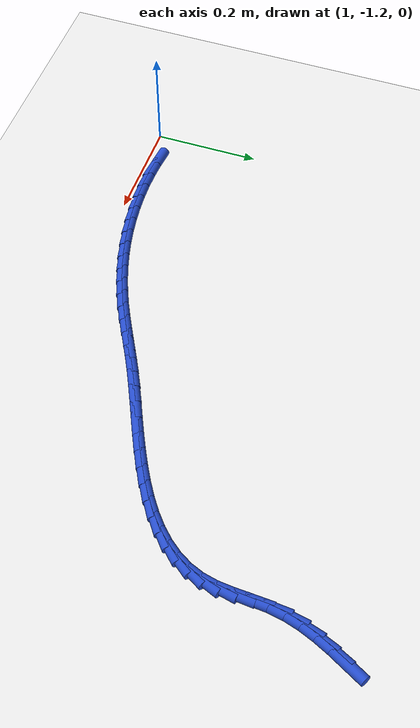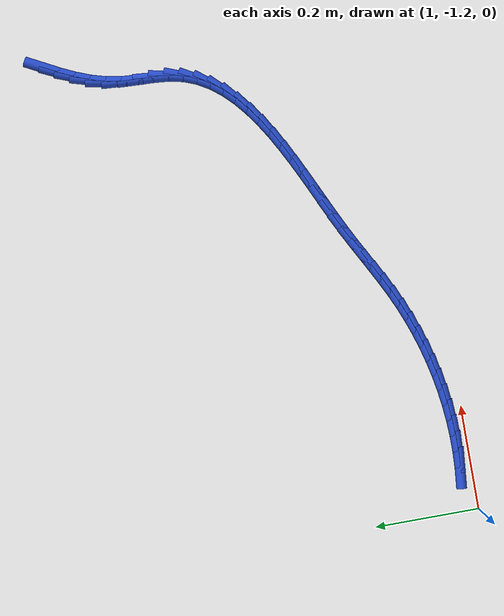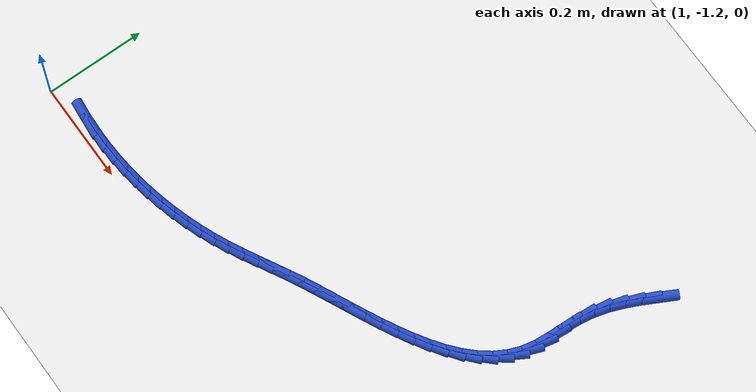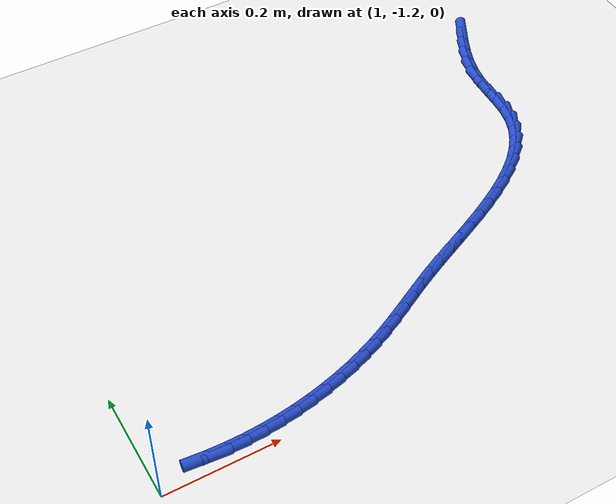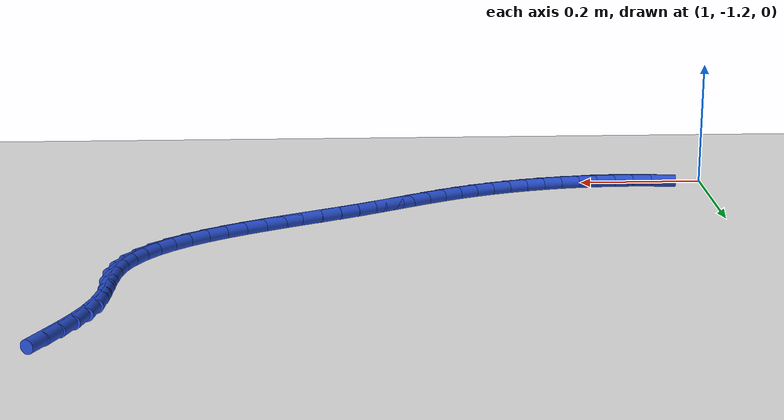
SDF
<sdf version="1.6">
 <world name="default">
  <model name="ground_plane">
   <static>1</static>
   <link name="link">
    <collision name="collision">
     <geometry><plane><normal>0 0 1</normal><size>100 100</size></plane></geometry>
     <surface><friction><ode><mu>100</mu><mu2>50</mu2></ode></friction></surface>
    </collision>
    <visual name="visual">
     <cast_shadows>0</cast_shadows>
     <geometry><plane><normal>0 0 1</normal><size>100 100</size></plane></geometry>
     <material>
      <script><uri>file://media/materials/scripts/gazebo.material</uri><name>Gazebo/WhiteGlow</name></script>
     </material>
    </visual>
   </link>
  </model>
  <model name="line">
   <link name="link_141">
    <pose>1.972735547722094 -0.5315266717839613 0.01 0 1.57 1.0895394332580013</pose>
    <collision name="collision">
     <geometry><cylinder><radius>0.01</radius><length>0.08</length></cylinder></geometry>
    </collision>
    <visual name="visual">
     <material>
      <script><name>Gazebo/Blue</name><uri>file://media/materials/scripts/gazebo.material</uri></script>
     </material>
     <geometry><cylinder><radius>0.01</radius><length>0.08</length></cylinder></geometry>
    </visual>
   </link>
   <link name="link_142">
    <pose>1.958671051342357 -0.5584593449574671 0.01 0 1.57 1.1349232564563208</pose>
    <collision name="collision">
     <geometry><cylinder><radius>0.01</radius><length>0.08</length></cylinder></geometry>
    </collision>
    <visual name="visual">
     <material>
      <script><name>Gazebo/Blue</name><uri>file://media/materials/scripts/gazebo.material</uri></script>
     </material>
     <geometry><cylinder><radius>0.01</radius><length>0.08</length></cylinder></geometry>
    </visual>
   </link>
   <link name="link_143">
    <pose>1.9459172053854918 -0.5858428816379575 0.01 0 1.57 1.2028109044663713</pose>
    <collision name="collision">
     <geometry><cylinder><radius>0.01</radius><length>0.08</length></cylinder></geometry>
    </collision>
    <visual name="visual">
     <material>
      <script><name>Gazebo/Blue</name><uri>file://media/materials/scripts/gazebo.material</uri></script>
     </material>
     <geometry><cylinder><radius>0.01</radius><length>0.08</length></cylinder></geometry>
    </visual>
   </link>
   <link name="link_144">
    <pose>1.9351276069982721 -0.613828028414443 0.01 0 1.57 1.2937505690378623</pose>
    <collision name="collision">
     <geometry><cylinder><radius>0.01</radius><length>0.08</length></cylinder></geometry>
    </collision>
    <visual name="visual">
     <material>
      <script><name>Gazebo/Blue</name><uri>file://media/materials/scripts/gazebo.material</uri></script>
     </material>
     <geometry><cylinder><radius>0.01</radius><length>0.08</length></cylinder></geometry>
    </visual>
   </link>
   <link name="link_145">
    <pose>1.926955853327473 -0.6425655318759336 0.01 0 1.57 1.4063452140352284</pose>
    <collision name="collision">
     <geometry><cylinder><radius>0.01</radius><length>0.08</length></cylinder></geometry>
    </collision>
    <visual name="visual">
     <material>
      <script><name>Gazebo/Blue</name><uri>file://media/materials/scripts/gazebo.material</uri></script>
     </material>
     <geometry><cylinder><radius>0.01</radius><length>0.08</length></cylinder></geometry>
    </visual>
   </link>
   <link name="link_146">
    <pose>1.9220380148349256 -0.6722000252129207 0.01 0 1.57 1.5027235412687323</pose>
    <collision name="collision">
     <geometry><cylinder><radius>0.01</radius><length>0.08</length></cylinder></geometry>
    </collision>
    <visual name="visual">
     <material>
      <script><name>Gazebo/Blue</name><uri>file://media/materials/scripts/gazebo.material</uri></script>
     </material>
     <geometry><cylinder><radius>0.01</radius><length>0.08</length></cylinder></geometry>
    </visual>
   </link>
   <link name="link_147">
    <pose>1.919971280161214 -0.7025137742538957 0.01 0 1.57 1.5303949656319236</pose>
    <collision name="collision">
     <geometry><cylinder><radius>0.01</radius><length>0.08</length></cylinder></geometry>
    </collision>
    <visual name="visual">
     <material>
      <script><name>Gazebo/Blue</name><uri>file://media/materials/scripts/gazebo.material</uri></script>
     </material>
     <geometry><cylinder><radius>0.01</radius><length>0.08</length></cylinder></geometry>
    </visual>
   </link>
   <link name="link_148">
    <pose>1.9187498424354406 -0.7327299116873564 0.01 0 1.57 1.4850168388738785</pose>
    <collision name="collision">
     <geometry><cylinder><radius>0.01</radius><length>0.08</length></cylinder></geometry>
    </collision>
    <visual name="visual">
     <material>
      <script><name>Gazebo/Blue</name><uri>file://media/materials/scripts/gazebo.material</uri></script>
     </material>
     <geometry><cylinder><radius>0.01</radius><length>0.08</length></cylinder></geometry>
    </visual>
   </link>
   <link name="link_149">
    <pose>1.9162308490614555 -0.7620237679427604 0.01 0 1.57 1.360731686510854</pose>
    <collision name="collision">
     <geometry><cylinder><radius>0.01</radius><length>0.08</length></cylinder></geometry>
    </collision>
    <visual name="visual">
     <material>
      <script><name>Gazebo/Blue</name><uri>file://media/materials/scripts/gazebo.material</uri></script>
     </material>
     <geometry><cylinder><radius>0.01</radius><length>0.08</length></cylinder></geometry>
    </visual>
   </link>
   <link name="link_150">
    <pose>1.9103509616213512 -0.7896016809310938 0.01 0 1.57 1.1988333541822627</pose>
    <collision name="collision">
     <geometry><cylinder><radius>0.01</radius><length>0.08</length></cylinder></geometry>
    </collision>
    <visual name="visual">
     <material>
      <script><name>Gazebo/Blue</name><uri>file://media/materials/scripts/gazebo.material</uri></script>
     </material>
     <geometry><cylinder><radius>0.01</radius><length>0.08</length></cylinder></geometry>
    </visual>
   </link>
   <link name="link_151">
    <pose>1.900369946191003 -0.8151859485978633 0.01 0 1.57 1.0463890483282117</pose>
    <collision name="collision">
     <geometry><cylinder><radius>0.01</radius><length>0.08</length></cylinder></geometry>
    </collision>
    <visual name="visual">
     <material>
      <script><name>Gazebo/Blue</name><uri>file://media/materials/scripts/gazebo.material</uri></script>
     </material>
     <geometry><cylinder><radius>0.01</radius><length>0.08</length></cylinder></geometry>
    </visual>
   </link>
   <link name="link_152">
    <pose>1.8866389131039947 -0.8389244513150046 0.01 0 1.57 0.9113168855630387</pose>
    <collision name="collision">
     <geometry><cylinder><radius>0.01</radius><length>0.08</length></cylinder></geometry>
    </collision>
    <visual name="visual">
     <material>
      <script><name>Gazebo/Blue</name><uri>file://media/materials/scripts/gazebo.material</uri></script>
     </material>
     <geometry><cylinder><radius>0.01</radius><length>0.08</length></cylinder></geometry>
    </visual>
   </link>
   <link name="link_153">
    <pose>1.8695415953245536 -0.8609777910298934 0.01 0 1.57 0.7964522340949942</pose>
    <collision name="collision">
     <geometry><cylinder><radius>0.01</radius><length>0.08</length></cylinder></geometry>
    </collision>
    <visual name="visual">
     <material>
      <script><name>Gazebo/Blue</name><uri>file://media/materials/scripts/gazebo.material</uri></script>
     </material>
     <geometry><cylinder><radius>0.01</radius><length>0.08</length></cylinder></geometry>
    </visual>
   </link>
   <link name="link_154">
    <pose>1.8494617258169082 -0.8815065696899055 0.01 0 1.57 0.7016182966310126</pose>
    <collision name="collision">
     <geometry><cylinder><radius>0.01</radius><length>0.08</length></cylinder></geometry>
    </collision>
    <visual name="visual">
     <material>
      <script><name>Gazebo/Blue</name><uri>file://media/materials/scripts/gazebo.material</uri></script>
     </material>
     <geometry><cylinder><radius>0.01</radius><length>0.08</length></cylinder></geometry>
    </visual>
   </link>
   <link name="link_155">
    <pose>1.8267830375452854 -0.9006713892424177 0.01 0 1.57 0.625026199521266</pose>
    <collision name="collision">
     <geometry><cylinder><radius>0.01</radius><length>0.08</length></cylinder></geometry>
    </collision>
    <visual name="visual">
     <material>
      <script><name>Gazebo/Blue</name><uri>file://media/materials/scripts/gazebo.material</uri></script>
     </material>
     <geometry><cylinder><radius>0.01</radius><length>0.08</length></cylinder></geometry>
    </visual>
   </link>
   <link name="link_156">
    <pose>1.801889263473914 -0.9186328516348046 0.01 0 1.57 0.5643769132016283</pose>
    <collision name="collision">
     <geometry><cylinder><radius>0.01</radius><length>0.08</length></cylinder></geometry>
    </collision>
    <visual name="visual">
     <material>
      <script><name>Gazebo/Blue</name><uri>file://media/materials/scripts/gazebo.material</uri></script>
     </material>
     <geometry><cylinder><radius>0.01</radius><length>0.08</length></cylinder></geometry>
    </visual>
   </link>
   <link name="link_157">
    <pose>1.775164136567021 -0.9355515588144426 0.01 0 1.57 0.5174812959984726</pose>
    <collision name="collision">
     <geometry><cylinder><radius>0.01</radius><length>0.08</length></cylinder></geometry>
    </collision>
    <visual name="visual">
     <material>
      <script><name>Gazebo/Blue</name><uri>file://media/materials/scripts/gazebo.material</uri></script>
     </material>
     <geometry><cylinder><radius>0.01</radius><length>0.08</length></cylinder></geometry>
    </visual>
   </link>
   <link name="link_158">
    <pose>1.7469913897888343 -0.9515881127287074 0.01 0 1.57 0.4825287391093509</pose>
    <collision name="collision">
     <geometry><cylinder><radius>0.01</radius><length>0.08</length></cylinder></geometry>
    </collision>
    <visual name="visual">
     <material>
      <script><name>Gazebo/Blue</name><uri>file://media/materials/scripts/gazebo.material</uri></script>
     </material>
     <geometry><cylinder><radius>0.01</radius><length>0.08</length></cylinder></geometry>
    </visual>
   </link>
   <link name="link_159">
    <pose>1.7177547561035822 -0.9669031153249755 0.01 0 1.57 0.45816845521325333</pose>
    <collision name="collision">
     <geometry><cylinder><radius>0.01</radius><length>0.08</length></cylinder></geometry>
    </collision>
    <visual name="visual">
     <material>
      <script><name>Gazebo/Blue</name><uri>file://media/materials/scripts/gazebo.material</uri></script>
     </material>
     <geometry><cylinder><radius>0.01</radius><length>0.08</length></cylinder></geometry>
    </visual>
   </link>
   <link name="link_160">
    <pose>1.687837968475491 -0.9816571685506218 0.01 0 1.57 0.44351400301915167</pose>
    <collision name="collision">
     <geometry><cylinder><radius>0.01</radius><length>0.08</length></cylinder></geometry>
    </collision>
    <visual name="visual">
     <material>
      <script><name>Gazebo/Blue</name><uri>file://media/materials/scripts/gazebo.material</uri></script>
     </material>
     <geometry><cylinder><radius>0.01</radius><length>0.08</length></cylinder></geometry>
    </visual>
   </link>
   <link name="link_161">
    <pose>1.6576247598687899 -0.9960108743530232 0.01 0 1.57 0.4381309708203284</pose>
    <collision name="collision">
     <geometry><cylinder><radius>0.01</radius><length>0.08</length></cylinder></geometry>
    </collision>
    <visual name="visual">
     <material>
      <script><name>Gazebo/Blue</name><uri>file://media/materials/scripts/gazebo.material</uri></script>
     </material>
     <geometry><cylinder><radius>0.01</radius><length>0.08</length></cylinder></geometry>
    </visual>
   </link>
   <link name="link_162">
    <pose>1.6274988632477059 -1.0101248346795555 0.01 0 1.57 0.4420376604432467</pose>
    <collision name="collision">
     <geometry><cylinder><radius>0.01</radius><length>0.08</length></cylinder></geometry>
    </collision>
    <visual name="visual">
     <material>
      <script><name>Gazebo/Blue</name><uri>file://media/materials/scripts/gazebo.material</uri></script>
     </material>
     <geometry><cylinder><radius>0.01</radius><length>0.08</length></cylinder></geometry>
    </visual>
   </link>
   <link name="link_163">
    <pose>1.597844011576467 -1.0241596514775937 0.01 0 1.57 0.4557343381545153</pose>
    <collision name="collision">
     <geometry><cylinder><radius>0.01</radius><length>0.08</length></cylinder></geometry>
    </collision>
    <visual name="visual">
     <material>
      <script><name>Gazebo/Blue</name><uri>file://media/materials/scripts/gazebo.material</uri></script>
     </material>
     <geometry><cylinder><radius>0.01</radius><length>0.08</length></cylinder></geometry>
    </visual>
   </link>
   <link name="link_164">
    <pose>1.569043937819301 -1.038275926694514 0.01 0 1.57 0.47754640039</pose>
    <collision name="collision">
     <geometry><cylinder><radius>0.01</radius><length>0.08</length></cylinder></geometry>
    </collision>
    <visual name="visual">
     <material>
      <script><name>Gazebo/Blue</name><uri>file://media/materials/scripts/gazebo.material</uri></script>
     </material>
     <geometry><cylinder><radius>0.01</radius><length>0.08</length></cylinder></geometry>
    </visual>
   </link>
   <link name="link_165">
    <pose>1.541391299822013 -1.0525860618862926 0.01 0 1.57 0.49317209742959994</pose>
    <collision name="collision">
     <geometry><cylinder><radius>0.01</radius><length>0.08</length></cylinder></geometry>
    </collision>
    <visual name="visual">
     <material>
      <script><name>Gazebo/Blue</name><uri>file://media/materials/scripts/gazebo.material</uri></script>
     </material>
     <geometry><cylinder><radius>0.01</radius><length>0.08</length></cylinder></geometry>
    </visual>
   </link>
   <link name="link_166">
    <pose>1.5146838211352924 -1.0669405206926552 0.01 0 1.57 0.49659739513525325</pose>
    <collision name="collision">
     <geometry><cylinder><radius>0.01</radius><length>0.08</length></cylinder></geometry>
    </collision>
    <visual name="visual">
     <material>
      <script><name>Gazebo/Blue</name><uri>file://media/materials/scripts/gazebo.material</uri></script>
     </material>
     <geometry><cylinder><radius>0.01</radius><length>0.08</length></cylinder></geometry>
    </visual>
   </link>
   <link name="link_167">
    <pose>1.4885519025371834 -1.0811012132244233 0.01 0 1.57 0.48699533676779416</pose>
    <collision name="collision">
     <geometry><cylinder><radius>0.01</radius><length>0.08</length></cylinder></geometry>
    </collision>
    <visual name="visual">
     <material>
      <script><name>Gazebo/Blue</name><uri>file://media/materials/scripts/gazebo.material</uri></script>
     </material>
     <geometry><cylinder><radius>0.01</radius><length>0.08</length></cylinder></geometry>
    </visual>
   </link>
   <link name="link_168">
    <pose>1.4626258133167123 -1.0948299800034664 0.01 0 1.57 0.46406718444651757</pose>
    <collision name="collision">
     <geometry><cylinder><radius>0.01</radius><length>0.08</length></cylinder></geometry>
    </collision>
    <visual name="visual">
     <material>
      <script><name>Gazebo/Blue</name><uri>file://media/materials/scripts/gazebo.material</uri></script>
     </material>
     <geometry><cylinder><radius>0.01</radius><length>0.08</length></cylinder></geometry>
    </visual>
   </link>
   <link name="link_169">
    <pose>1.4365358227629055 -1.1078886615516537 0.01 0 1.57 0.42842804268968004</pose>
    <collision name="collision">
     <geometry><cylinder><radius>0.01</radius><length>0.08</length></cylinder></geometry>
    </collision>
    <visual name="visual">
     <material>
      <script><name>Gazebo/Blue</name><uri>file://media/materials/scripts/gazebo.material</uri></script>
     </material>
     <geometry><cylinder><radius>0.01</radius><length>0.08</length></cylinder></geometry>
    </visual>
   </link>
   <link name="link_170">
    <pose>1.4099220559380945 -1.1200436958233437 0.01 0 1.57 0.3868620651532414</pose>
    <collision name="collision">
     <geometry><cylinder><radius>0.01</radius><length>0.08</length></cylinder></geometry>
    </collision>
    <visual name="visual">
     <material>
      <script><name>Gazebo/Blue</name><uri>file://media/materials/scripts/gazebo.material</uri></script>
     </material>
     <geometry><cylinder><radius>0.01</radius><length>0.08</length></cylinder></geometry>
    </visual>
   </link>
   <link name="link_171">
    <pose>1.382635642637947 -1.1311599483631338 0.01 0 1.57 0.3452688379721972</pose>
    <collision name="collision">
     <geometry><cylinder><radius>0.01</radius><length>0.08</length></cylinder></geometry>
    </collision>
    <visual name="visual">
     <material>
      <script><name>Gazebo/Blue</name><uri>file://media/materials/scripts/gazebo.material</uri></script>
     </material>
     <geometry><cylinder><radius>0.01</radius><length>0.08</length></cylinder></geometry>
    </visual>
   </link>
   <link name="link_172">
    <pose>1.3547303582753139 -1.1411968130205419 0.01 0 1.57 0.30372491097744087</pose>
    <collision name="collision">
     <geometry><cylinder><radius>0.01</radius><length>0.08</length></cylinder></geometry>
    </collision>
    <visual name="visual">
     <material>
      <script><name>Gazebo/Blue</name><uri>file://media/materials/scripts/gazebo.material</uri></script>
     </material>
     <geometry><cylinder><radius>0.01</radius><length>0.08</length></cylinder></geometry>
    </visual>
   </link>
   <link name="link_173">
    <pose>1.3262681613567662 -1.1501175008210456 0.01 0 1.57 0.262078935788794</pose>
    <collision name="collision">
     <geometry><cylinder><radius>0.01</radius><length>0.08</length></cylinder></geometry>
    </collision>
    <visual name="visual">
     <material>
      <script><name>Gazebo/Blue</name><uri>file://media/materials/scripts/gazebo.material</uri></script>
     </material>
     <geometry><cylinder><radius>0.01</radius><length>0.08</length></cylinder></geometry>
    </visual>
   </link>
   <link name="link_174">
    <pose>1.2973110103888728 -1.1578852227901217 0.01 0 1.57 0.22018662978799503</pose>
    <collision name="collision">
     <geometry><cylinder><radius>0.01</radius><length>0.08</length></cylinder></geometry>
    </collision>
    <visual name="visual">
     <material>
      <script><name>Gazebo/Blue</name><uri>file://media/materials/scripts/gazebo.material</uri></script>
     </material>
     <geometry><cylinder><radius>0.01</radius><length>0.08</length></cylinder></geometry>
    </visual>
   </link>
   <link name="link_175">
    <pose>1.2679208638782025 -1.1644631899532456 0.01 0 1.57 0.17791100958511497</pose>
    <collision name="collision">
     <geometry><cylinder><radius>0.01</radius><length>0.08</length></cylinder></geometry>
    </collision>
    <visual name="visual">
     <material>
      <script><name>Gazebo/Blue</name><uri>file://media/materials/scripts/gazebo.material</uri></script>
     </material>
     <geometry><cylinder><radius>0.01</radius><length>0.08</length></cylinder></geometry>
    </visual>
   </link>
   <link name="link_176">
    <pose>1.2381596803313246 -1.1698146133358955 0.01 0 1.57 0.13512286337315235</pose>
    <collision name="collision">
     <geometry><cylinder><radius>0.01</radius><length>0.08</length></cylinder></geometry>
    </collision>
    <visual name="visual">
     <material>
      <script><name>Gazebo/Blue</name><uri>file://media/materials/scripts/gazebo.material</uri></script>
     </material>
     <geometry><cylinder><radius>0.01</radius><length>0.08</length></cylinder></geometry>
    </visual>
   </link>
   <link name="link_177">
    <pose>1.2080894182548074 -1.173902703963547 0.01 0 1.57 0.09170150881262269</pose>
    <collision name="collision">
     <geometry><cylinder><radius>0.01</radius><length>0.08</length></cylinder></geometry>
    </collision>
    <visual name="visual">
     <material>
      <script><name>Gazebo/Blue</name><uri>file://media/materials/scripts/gazebo.material</uri></script>
     </material>
     <geometry><cylinder><radius>0.01</radius><length>0.08</length></cylinder></geometry>
    </visual>
   </link>
   <link name="link_178">
    <pose>1.1777720361552226 -1.1766906728616777 0.01 0 1.57 0.04753587379264002</pose>
    <collision name="collision">
     <geometry><cylinder><radius>0.01</radius><length>0.08</length></cylinder></geometry>
    </collision>
    <visual name="visual">
     <material>
      <script><name>Gazebo/Blue</name><uri>file://media/materials/scripts/gazebo.material</uri></script>
     </material>
     <geometry><cylinder><radius>0.01</radius><length>0.08</length></cylinder></geometry>
    </visual>
   </link>
   <link name="link_179">
    <pose>1.1472694925391376 -1.1781417310557636 0.01 0 1.57 0.0025259253901275098</pose>
    <collision name="collision">
     <geometry><cylinder><radius>0.01</radius><length>0.08</length></cylinder></geometry>
    </collision>
    <visual name="visual">
     <material>
      <script><name>Gazebo/Blue</name><uri>file://media/materials/scripts/gazebo.material</uri></script>
     </material>
     <geometry><cylinder><radius>0.01</radius><length>0.08</length></cylinder></geometry>
    </visual>
   </link>
   <link name="link_180">
    <pose>1.1166437459131222 -1.1782190895712814 0.01 0 1.57 -0.043415829175497404</pose>
    <collision name="collision">
     <geometry><cylinder><radius>0.01</radius><length>0.08</length></cylinder></geometry>
    </collision>
    <visual name="visual">
     <material>
      <script><name>Gazebo/Blue</name><uri>file://media/materials/scripts/gazebo.material</uri></script>
     </material>
     <geometry><cylinder><radius>0.01</radius><length>0.08</length></cylinder></geometry>
    </visual>
   </link>
   <link name="link_181">
    <pose>1.0859567703188995 -1.1768859513497405 0.01 0 1.57 -0.09078918816864029</pose>
    <collision name="collision">
     <geometry><cylinder><radius>0.01</radius><length>0.08</length></cylinder></geometry>
    </collision>
    <visual name="visual">
     <material>
      <script><name>Gazebo/Blue</name><uri>file://media/materials/scripts/gazebo.material</uri></script>
     </material>
     <geometry><cylinder><radius>0.01</radius><length>0.08</length></cylinder></geometry>
    </visual>
   </link>
  </model>
 </world>
</sdf>
